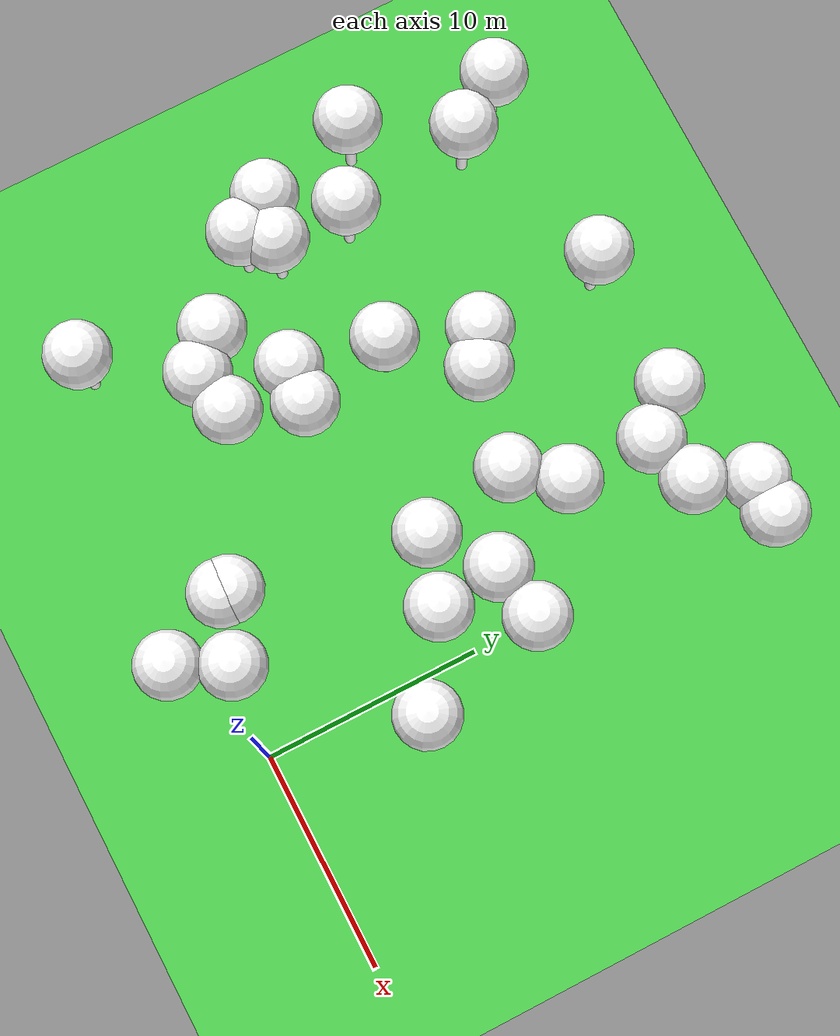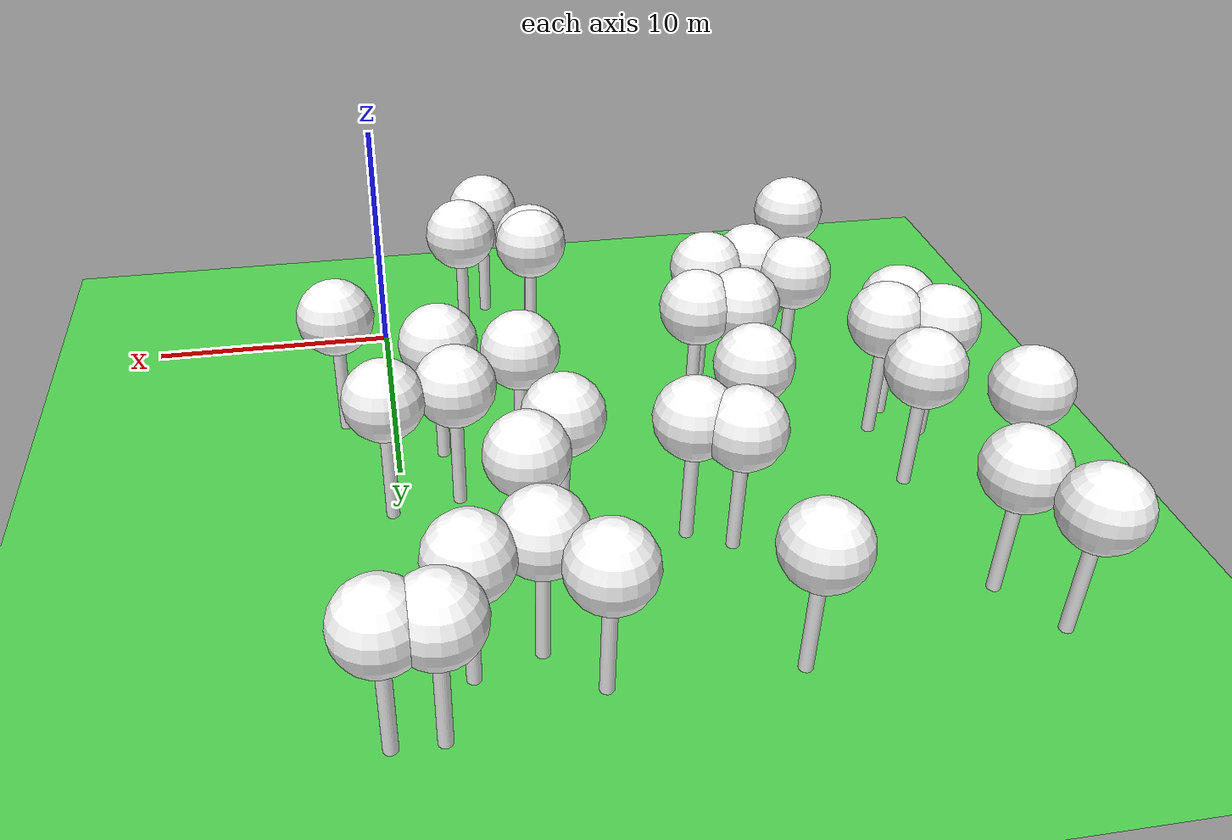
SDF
<sdf version="1.8">
 <world name="forest_world">
  <model name="tree_simple498">
   <static>1</static>
   <link name="link">
    <pose>0 0 0.1 0 -0 0</pose>
    <collision name="collision_trunk">
     <pose>0 0 2 0 -0 0</pose>
     <geometry><cylinder><radius>0.25</radius><length>4</length></cylinder></geometry>
    </collision>
    <collision name="collision_treetop">
     <pose>0 0 5.2 0 -0 0</pose>
     <geometry><sphere><radius>1.5</radius></sphere></geometry>
    </collision>
    <visual name="trunk_498">
     <pose>0 0 2 0 -0 0</pose>
     <geometry><cylinder><radius>0.25</radius><length>4</length></cylinder></geometry>
     <material>
      <ambient>0.5 0.5 0.5 1</ambient>
      <diffuse>1.0 1.0 1.0 1</diffuse>
      <specular>0.0 0.0 0.0 1</specular>
      <pbr>
       <metal>
        <albedo_map>file://textures/tree_simple_trunk.jpg</albedo_map>
        <metalness>0.0</metalness>
        <roughness>0.8</roughness>
       </metal>
      </pbr>
     </material>
    </visual>
    <visual name="treetop_498">
     <pose>0 0 5.2 0 -0 0</pose>
     <geometry><sphere><radius>1.5</radius></sphere></geometry>
     <material>
      <ambient>0.5 0.5 0.5 1</ambient>
      <diffuse>1.0 1.0 1.0 1</diffuse>
      <specular>0.0 0.0 0.0 1</specular>
      <pbr>
       <metal>
        <albedo_map>file://textures/tree_simple_treetop.jpg</albedo_map>
        <metalness>0.0</metalness>
        <roughness>0.9</roughness>
       </metal>
      </pbr>
     </material>
    </visual>
   </link>
   <pose>-20.062069779 9.09254194943 0 0 -0 0</pose>
  </model>
  <model name="tree_simple488">
   <static>1</static>
   <link name="link">
    <pose>0 0 0.1 0 -0 0</pose>
    <collision name="collision_trunk">
     <pose>0 0 2 0 -0 0</pose>
     <geometry><cylinder><radius>0.25</radius><length>4</length></cylinder></geometry>
    </collision>
    <collision name="collision_treetop">
     <pose>0 0 5.2 0 -0 0</pose>
     <geometry><sphere><radius>1.5</radius></sphere></geometry>
    </collision>
    <visual name="trunk_488">
     <pose>0 0 2 0 -0 0</pose>
     <geometry><cylinder><radius>0.25</radius><length>4</length></cylinder></geometry>
     <material>
      <ambient>0.5 0.5 0.5 1</ambient>
      <diffuse>1.0 1.0 1.0 1</diffuse>
      <specular>0.0 0.0 0.0 1</specular>
      <pbr>
       <metal>
        <albedo_map>file://textures/tree_simple_trunk.jpg</albedo_map>
        <metalness>0.0</metalness>
        <roughness>0.8</roughness>
       </metal>
      </pbr>
     </material>
    </visual>
    <visual name="treetop_488">
     <pose>0 0 5.2 0 -0 0</pose>
     <geometry><sphere><radius>1.5</radius></sphere></geometry>
     <material>
      <ambient>0.5 0.5 0.5 1</ambient>
      <diffuse>1.0 1.0 1.0 1</diffuse>
      <specular>0.0 0.0 0.0 1</specular>
      <pbr>
       <metal>
        <albedo_map>file://textures/tree_simple_treetop.jpg</albedo_map>
        <metalness>0.0</metalness>
        <roughness>0.9</roughness>
       </metal>
      </pbr>
     </material>
    </visual>
   </link>
   <pose>-13.1215818691 12.435953241 0 0 -0 0</pose>
  </model>
  <model name="tree_simple480">
   <static>1</static>
   <link name="link">
    <pose>0 0 0.1 0 -0 0</pose>
    <collision name="collision_trunk">
     <pose>0 0 2 0 -0 0</pose>
     <geometry><cylinder><radius>0.25</radius><length>4</length></cylinder></geometry>
    </collision>
    <collision name="collision_treetop">
     <pose>0 0 5.2 0 -0 0</pose>
     <geometry><sphere><radius>1.5</radius></sphere></geometry>
    </collision>
    <visual name="trunk_480">
     <pose>0 0 2 0 -0 0</pose>
     <geometry><cylinder><radius>0.25</radius><length>4</length></cylinder></geometry>
     <material>
      <ambient>0.5 0.5 0.5 1</ambient>
      <diffuse>1.0 1.0 1.0 1</diffuse>
      <specular>0.0 0.0 0.0 1</specular>
      <pbr>
       <metal>
        <albedo_map>file://textures/tree_simple_trunk.jpg</albedo_map>
        <metalness>0.0</metalness>
        <roughness>0.8</roughness>
       </metal>
      </pbr>
     </material>
    </visual>
    <visual name="treetop_480">
     <pose>0 0 5.2 0 -0 0</pose>
     <geometry><sphere><radius>1.5</radius></sphere></geometry>
     <material>
      <ambient>0.5 0.5 0.5 1</ambient>
      <diffuse>1.0 1.0 1.0 1</diffuse>
      <specular>0.0 0.0 0.0 1</specular>
      <pbr>
       <metal>
        <albedo_map>file://textures/tree_simple_treetop.jpg</albedo_map>
        <metalness>0.0</metalness>
        <roughness>0.9</roughness>
       </metal>
      </pbr>
     </material>
    </visual>
   </link>
   <pose>-2.16211412072 12.1351070175 0 0 -0 0</pose>
  </model>
  <model name="tree_simple479">
   <static>1</static>
   <link name="link">
    <pose>0 0 0.1 0 -0 0</pose>
    <collision name="collision_trunk">
     <pose>0 0 2 0 -0 0</pose>
     <geometry><cylinder><radius>0.25</radius><length>4</length></cylinder></geometry>
    </collision>
    <collision name="collision_treetop">
     <pose>0 0 5.2 0 -0 0</pose>
     <geometry><sphere><radius>1.5</radius></sphere></geometry>
    </collision>
    <visual name="trunk_479">
     <pose>0 0 2 0 -0 0</pose>
     <geometry><cylinder><radius>0.25</radius><length>4</length></cylinder></geometry>
     <material>
      <ambient>0.5 0.5 0.5 1</ambient>
      <diffuse>1.0 1.0 1.0 1</diffuse>
      <specular>0.0 0.0 0.0 1</specular>
      <pbr>
       <metal>
        <albedo_map>file://textures/tree_simple_trunk.jpg</albedo_map>
        <metalness>0.0</metalness>
        <roughness>0.8</roughness>
       </metal>
      </pbr>
     </material>
    </visual>
    <visual name="treetop_479">
     <pose>0 0 5.2 0 -0 0</pose>
     <geometry><sphere><radius>1.5</radius></sphere></geometry>
     <material>
      <ambient>0.5 0.5 0.5 1</ambient>
      <diffuse>1.0 1.0 1.0 1</diffuse>
      <specular>0.0 0.0 0.0 1</specular>
      <pbr>
       <metal>
        <albedo_map>file://textures/tree_simple_treetop.jpg</albedo_map>
        <metalness>0.0</metalness>
        <roughness>0.9</roughness>
       </metal>
      </pbr>
     </material>
    </visual>
   </link>
   <pose>-12.2778199556 22.3020251283 0 0 -0 0</pose>
  </model>
  <model name="tree_simple471">
   <static>1</static>
   <link name="link">
    <pose>0 0 0.1 0 -0 0</pose>
    <collision name="collision_trunk">
     <pose>0 0 2 0 -0 0</pose>
     <geometry><cylinder><radius>0.25</radius><length>4</length></cylinder></geometry>
    </collision>
    <collision name="collision_treetop">
     <pose>0 0 5.2 0 -0 0</pose>
     <geometry><sphere><radius>1.5</radius></sphere></geometry>
    </collision>
    <visual name="trunk_471">
     <pose>0 0 2 0 -0 0</pose>
     <geometry><cylinder><radius>0.25</radius><length>4</length></cylinder></geometry>
     <material>
      <ambient>0.5 0.5 0.5 1</ambient>
      <diffuse>1.0 1.0 1.0 1</diffuse>
      <specular>0.0 0.0 0.0 1</specular>
      <pbr>
       <metal>
        <albedo_map>file://textures/tree_simple_trunk.jpg</albedo_map>
        <metalness>0.0</metalness>
        <roughness>0.8</roughness>
       </metal>
      </pbr>
     </material>
    </visual>
    <visual name="treetop_471">
     <pose>0 0 5.2 0 -0 0</pose>
     <geometry><sphere><radius>1.5</radius></sphere></geometry>
     <material>
      <ambient>0.5 0.5 0.5 1</ambient>
      <diffuse>1.0 1.0 1.0 1</diffuse>
      <specular>0.0 0.0 0.0 1</specular>
      <pbr>
       <metal>
        <albedo_map>file://textures/tree_simple_treetop.jpg</albedo_map>
        <metalness>0.0</metalness>
        <roughness>0.9</roughness>
       </metal>
      </pbr>
     </material>
    </visual>
   </link>
   <pose>-4.10985349052 16.4703272545 0 0 -0 0</pose>
  </model>
  <model name="tree_simple466">
   <static>1</static>
   <link name="link">
    <pose>0 0 0.1 0 -0 0</pose>
    <collision name="collision_trunk">
     <pose>0 0 2 0 -0 0</pose>
     <geometry><cylinder><radius>0.25</radius><length>4</length></cylinder></geometry>
    </collision>
    <collision name="collision_treetop">
     <pose>0 0 5.2 0 -0 0</pose>
     <geometry><sphere><radius>1.5</radius></sphere></geometry>
    </collision>
    <visual name="trunk_466">
     <pose>0 0 2 0 -0 0</pose>
     <geometry><cylinder><radius>0.25</radius><length>4</length></cylinder></geometry>
     <material>
      <ambient>0.5 0.5 0.5 1</ambient>
      <diffuse>1.0 1.0 1.0 1</diffuse>
      <specular>0.0 0.0 0.0 1</specular>
      <pbr>
       <metal>
        <albedo_map>file://textures/tree_simple_trunk.jpg</albedo_map>
        <metalness>0.0</metalness>
        <roughness>0.8</roughness>
       </metal>
      </pbr>
     </material>
    </visual>
    <visual name="treetop_466">
     <pose>0 0 5.2 0 -0 0</pose>
     <geometry><sphere><radius>1.5</radius></sphere></geometry>
     <material>
      <ambient>0.5 0.5 0.5 1</ambient>
      <diffuse>1.0 1.0 1.0 1</diffuse>
      <specular>0.0 0.0 0.0 1</specular>
      <pbr>
       <metal>
        <albedo_map>file://textures/tree_simple_treetop.jpg</albedo_map>
        <metalness>0.0</metalness>
        <roughness>0.9</roughness>
       </metal>
      </pbr>
     </material>
    </visual>
   </link>
   <pose>-5.77986608036 22.173723886 0 0 -0 0</pose>
  </model>
  <model name="tree_simple460">
   <static>1</static>
   <link name="link">
    <pose>0 0 0.1 0 -0 0</pose>
    <collision name="collision_trunk">
     <pose>0 0 2 0 -0 0</pose>
     <geometry><cylinder><radius>0.25</radius><length>4</length></cylinder></geometry>
    </collision>
    <collision name="collision_treetop">
     <pose>0 0 5.2 0 -0 0</pose>
     <geometry><sphere><radius>1.5</radius></sphere></geometry>
    </collision>
    <visual name="trunk_460">
     <pose>0 0 2 0 -0 0</pose>
     <geometry><cylinder><radius>0.25</radius><length>4</length></cylinder></geometry>
     <material>
      <ambient>0.5 0.5 0.5 1</ambient>
      <diffuse>1.0 1.0 1.0 1</diffuse>
      <specular>0.0 0.0 0.0 1</specular>
      <pbr>
       <metal>
        <albedo_map>file://textures/tree_simple_trunk.jpg</albedo_map>
        <metalness>0.0</metalness>
        <roughness>0.8</roughness>
       </metal>
      </pbr>
     </material>
    </visual>
    <visual name="treetop_460">
     <pose>0 0 5.2 0 -0 0</pose>
     <geometry><sphere><radius>1.5</radius></sphere></geometry>
     <material>
      <ambient>0.5 0.5 0.5 1</ambient>
      <diffuse>1.0 1.0 1.0 1</diffuse>
      <specular>0.0 0.0 0.0 1</specular>
      <pbr>
       <metal>
        <albedo_map>file://textures/tree_simple_treetop.jpg</albedo_map>
        <metalness>0.0</metalness>
        <roughness>0.9</roughness>
       </metal>
      </pbr>
     </material>
    </visual>
   </link>
   <pose>-19.1263542494 10.273291852 0 0 -0 0</pose>
  </model>
  <model name="tree_simple453">
   <static>1</static>
   <link name="link">
    <pose>0 0 0.1 0 -0 0</pose>
    <collision name="collision_trunk">
     <pose>0 0 2 0 -0 0</pose>
     <geometry><cylinder><radius>0.25</radius><length>4</length></cylinder></geometry>
    </collision>
    <collision name="collision_treetop">
     <pose>0 0 5.2 0 -0 0</pose>
     <geometry><sphere><radius>1.5</radius></sphere></geometry>
    </collision>
    <visual name="trunk_453">
     <pose>0 0 2 0 -0 0</pose>
     <geometry><cylinder><radius>0.25</radius><length>4</length></cylinder></geometry>
     <material>
      <ambient>0.5 0.5 0.5 1</ambient>
      <diffuse>1.0 1.0 1.0 1</diffuse>
      <specular>0.0 0.0 0.0 1</specular>
      <pbr>
       <metal>
        <albedo_map>file://textures/tree_simple_trunk.jpg</albedo_map>
        <metalness>0.0</metalness>
        <roughness>0.8</roughness>
       </metal>
      </pbr>
     </material>
    </visual>
    <visual name="treetop_453">
     <pose>0 0 5.2 0 -0 0</pose>
     <geometry><sphere><radius>1.5</radius></sphere></geometry>
     <material>
      <ambient>0.5 0.5 0.5 1</ambient>
      <diffuse>1.0 1.0 1.0 1</diffuse>
      <specular>0.0 0.0 0.0 1</specular>
      <pbr>
       <metal>
        <albedo_map>file://textures/tree_simple_treetop.jpg</albedo_map>
        <metalness>0.0</metalness>
        <roughness>0.9</roughness>
       </metal>
      </pbr>
     </material>
    </visual>
   </link>
   <pose>-12.135251061 8.19022164755 0 0 -0 0</pose>
  </model>
  <model name="tree_simple442">
   <static>1</static>
   <link name="link">
    <pose>0 0 0.1 0 -0 0</pose>
    <collision name="collision_trunk">
     <pose>0 0 2 0 -0 0</pose>
     <geometry><cylinder><radius>0.25</radius><length>4</length></cylinder></geometry>
    </collision>
    <collision name="collision_treetop">
     <pose>0 0 5.2 0 -0 0</pose>
     <geometry><sphere><radius>1.5</radius></sphere></geometry>
    </collision>
    <visual name="trunk_442">
     <pose>0 0 2 0 -0 0</pose>
     <geometry><cylinder><radius>0.25</radius><length>4</length></cylinder></geometry>
     <material>
      <ambient>0.5 0.5 0.5 1</ambient>
      <diffuse>1.0 1.0 1.0 1</diffuse>
      <specular>0.0 0.0 0.0 1</specular>
      <pbr>
       <metal>
        <albedo_map>file://textures/tree_simple_trunk.jpg</albedo_map>
        <metalness>0.0</metalness>
        <roughness>0.8</roughness>
       </metal>
      </pbr>
     </material>
    </visual>
    <visual name="treetop_442">
     <pose>0 0 5.2 0 -0 0</pose>
     <geometry><sphere><radius>1.5</radius></sphere></geometry>
     <material>
      <ambient>0.5 0.5 0.5 1</ambient>
      <diffuse>1.0 1.0 1.0 1</diffuse>
      <specular>0.0 0.0 0.0 1</specular>
      <pbr>
       <metal>
        <albedo_map>file://textures/tree_simple_treetop.jpg</albedo_map>
        <metalness>0.0</metalness>
        <roughness>0.9</roughness>
       </metal>
      </pbr>
     </material>
    </visual>
   </link>
   <pose>-1.68249170611 21.1094247696 0 0 -0 0</pose>
  </model>
  <model name="tree_simple424">
   <static>1</static>
   <link name="link">
    <pose>0 0 0.1 0 -0 0</pose>
    <collision name="collision_trunk">
     <pose>0 0 2 0 -0 0</pose>
     <geometry><cylinder><radius>0.25</radius><length>4</length></cylinder></geometry>
    </collision>
    <collision name="collision_treetop">
     <pose>0 0 5.2 0 -0 0</pose>
     <geometry><sphere><radius>1.5</radius></sphere></geometry>
    </collision>
    <visual name="trunk_424">
     <pose>0 0 2 0 -0 0</pose>
     <geometry><cylinder><radius>0.25</radius><length>4</length></cylinder></geometry>
     <material>
      <ambient>0.5 0.5 0.5 1</ambient>
      <diffuse>1.0 1.0 1.0 1</diffuse>
      <specular>0.0 0.0 0.0 1</specular>
      <pbr>
       <metal>
        <albedo_map>file://textures/tree_simple_trunk.jpg</albedo_map>
        <metalness>0.0</metalness>
        <roughness>0.8</roughness>
       </metal>
      </pbr>
     </material>
    </visual>
    <visual name="treetop_424">
     <pose>0 0 5.2 0 -0 0</pose>
     <geometry><sphere><radius>1.5</radius></sphere></geometry>
     <material>
      <ambient>0.5 0.5 0.5 1</ambient>
      <diffuse>1.0 1.0 1.0 1</diffuse>
      <specular>0.0 0.0 0.0 1</specular>
      <pbr>
       <metal>
        <albedo_map>file://textures/tree_simple_treetop.jpg</albedo_map>
        <metalness>0.0</metalness>
        <roughness>0.9</roughness>
       </metal>
      </pbr>
     </material>
    </visual>
   </link>
   <pose>-16.7770993139 6.12178979124 0 0 -0 0</pose>
  </model>
  <model name="tree_simple417">
   <static>1</static>
   <link name="link">
    <pose>0 0 0.1 0 -0 0</pose>
    <collision name="collision_trunk">
     <pose>0 0 2 0 -0 0</pose>
     <geometry><cylinder><radius>0.25</radius><length>4</length></cylinder></geometry>
    </collision>
    <collision name="collision_treetop">
     <pose>0 0 5.2 0 -0 0</pose>
     <geometry><sphere><radius>1.5</radius></sphere></geometry>
    </collision>
    <visual name="trunk_417">
     <pose>0 0 2 0 -0 0</pose>
     <geometry><cylinder><radius>0.25</radius><length>4</length></cylinder></geometry>
     <material>
      <ambient>0.5 0.5 0.5 1</ambient>
      <diffuse>1.0 1.0 1.0 1</diffuse>
      <specular>0.0 0.0 0.0 1</specular>
      <pbr>
       <metal>
        <albedo_map>file://textures/tree_simple_trunk.jpg</albedo_map>
        <metalness>0.0</metalness>
        <roughness>0.8</roughness>
       </metal>
      </pbr>
     </material>
    </visual>
    <visual name="treetop_417">
     <pose>0 0 5.2 0 -0 0</pose>
     <geometry><sphere><radius>1.5</radius></sphere></geometry>
     <material>
      <ambient>0.5 0.5 0.5 1</ambient>
      <diffuse>1.0 1.0 1.0 1</diffuse>
      <specular>0.0 0.0 0.0 1</specular>
      <pbr>
       <metal>
        <albedo_map>file://textures/tree_simple_treetop.jpg</albedo_map>
        <metalness>0.0</metalness>
        <roughness>0.9</roughness>
       </metal>
      </pbr>
     </material>
    </visual>
   </link>
   <pose>-1.82310579314 9.17527441854 0 0 -0 0</pose>
  </model>
  <model name="tree_simple412">
   <static>1</static>
   <link name="link">
    <pose>0 0 0.1 0 -0 0</pose>
    <collision name="collision_trunk">
     <pose>0 0 2 0 -0 0</pose>
     <geometry><cylinder><radius>0.25</radius><length>4</length></cylinder></geometry>
    </collision>
    <collision name="collision_treetop">
     <pose>0 0 5.2 0 -0 0</pose>
     <geometry><sphere><radius>1.5</radius></sphere></geometry>
    </collision>
    <visual name="trunk_412">
     <pose>0 0 2 0 -0 0</pose>
     <geometry><cylinder><radius>0.25</radius><length>4</length></cylinder></geometry>
     <material>
      <ambient>0.5 0.5 0.5 1</ambient>
      <diffuse>1.0 1.0 1.0 1</diffuse>
      <specular>0.0 0.0 0.0 1</specular>
      <pbr>
       <metal>
        <albedo_map>file://textures/tree_simple_trunk.jpg</albedo_map>
        <metalness>0.0</metalness>
        <roughness>0.8</roughness>
       </metal>
      </pbr>
     </material>
    </visual>
    <visual name="treetop_412">
     <pose>0 0 5.2 0 -0 0</pose>
     <geometry><sphere><radius>1.5</radius></sphere></geometry>
     <material>
      <ambient>0.5 0.5 0.5 1</ambient>
      <diffuse>1.0 1.0 1.0 1</diffuse>
      <specular>0.0 0.0 0.0 1</specular>
      <pbr>
       <metal>
        <albedo_map>file://textures/tree_simple_treetop.jpg</albedo_map>
        <metalness>0.0</metalness>
        <roughness>0.9</roughness>
       </metal>
      </pbr>
     </material>
    </visual>
   </link>
   <pose>1.94235434688 6.68973059551 0 0 -0 0</pose>
  </model>
  <model name="tree_simple393">
   <static>1</static>
   <link name="link">
    <pose>0 0 0.1 0 -0 0</pose>
    <collision name="collision_trunk">
     <pose>0 0 2 0 -0 0</pose>
     <geometry><cylinder><radius>0.25</radius><length>4</length></cylinder></geometry>
    </collision>
    <collision name="collision_treetop">
     <pose>0 0 5.2 0 -0 0</pose>
     <geometry><sphere><radius>1.5</radius></sphere></geometry>
    </collision>
    <visual name="trunk_393">
     <pose>0 0 2 0 -0 0</pose>
     <geometry><cylinder><radius>0.25</radius><length>4</length></cylinder></geometry>
     <material>
      <ambient>0.5 0.5 0.5 1</ambient>
      <diffuse>1.0 1.0 1.0 1</diffuse>
      <specular>0.0 0.0 0.0 1</specular>
      <pbr>
       <metal>
        <albedo_map>file://textures/tree_simple_trunk.jpg</albedo_map>
        <metalness>0.0</metalness>
        <roughness>0.8</roughness>
       </metal>
      </pbr>
     </material>
    </visual>
    <visual name="treetop_393">
     <pose>0 0 5.2 0 -0 0</pose>
     <geometry><sphere><radius>1.5</radius></sphere></geometry>
     <material>
      <ambient>0.5 0.5 0.5 1</ambient>
      <diffuse>1.0 1.0 1.0 1</diffuse>
      <specular>0.0 0.0 0.0 1</specular>
      <pbr>
       <metal>
        <albedo_map>file://textures/tree_simple_treetop.jpg</albedo_map>
        <metalness>0.0</metalness>
        <roughness>0.9</roughness>
       </metal>
      </pbr>
     </material>
    </visual>
   </link>
   <pose>-19.2161378336 13.717868908 0 0 -0 0</pose>
  </model>
  <model name="tree_simple376">
   <static>1</static>
   <link name="link">
    <pose>0 0 0.1 0 -0 0</pose>
    <collision name="collision_trunk">
     <pose>0 0 2 0 -0 0</pose>
     <geometry><cylinder><radius>0.25</radius><length>4</length></cylinder></geometry>
    </collision>
    <collision name="collision_treetop">
     <pose>0 0 5.2 0 -0 0</pose>
     <geometry><sphere><radius>1.5</radius></sphere></geometry>
    </collision>
    <visual name="trunk_376">
     <pose>0 0 2 0 -0 0</pose>
     <geometry><cylinder><radius>0.25</radius><length>4</length></cylinder></geometry>
     <material>
      <ambient>0.5 0.5 0.5 1</ambient>
      <diffuse>1.0 1.0 1.0 1</diffuse>
      <specular>0.0 0.0 0.0 1</specular>
      <pbr>
       <metal>
        <albedo_map>file://textures/tree_simple_trunk.jpg</albedo_map>
        <metalness>0.0</metalness>
        <roughness>0.8</roughness>
       </metal>
      </pbr>
     </material>
    </visual>
    <visual name="treetop_376">
     <pose>0 0 5.2 0 -0 0</pose>
     <geometry><sphere><radius>1.5</radius></sphere></geometry>
     <material>
      <ambient>0.5 0.5 0.5 1</ambient>
      <diffuse>1.0 1.0 1.0 1</diffuse>
      <specular>0.0 0.0 0.0 1</specular>
      <pbr>
       <metal>
        <albedo_map>file://textures/tree_simple_treetop.jpg</albedo_map>
        <metalness>0.0</metalness>
        <roughness>0.9</roughness>
       </metal>
      </pbr>
     </material>
    </visual>
   </link>
   <pose>-3.57495660346 0.511559407044 0 0 -0 0</pose>
  </model>
  <model name="tree_simple360">
   <static>1</static>
   <link name="link">
    <pose>0 0 0.1 0 -0 0</pose>
    <collision name="collision_trunk">
     <pose>0 0 2 0 -0 0</pose>
     <geometry><cylinder><radius>0.25</radius><length>4</length></cylinder></geometry>
    </collision>
    <collision name="collision_treetop">
     <pose>0 0 5.2 0 -0 0</pose>
     <geometry><sphere><radius>1.5</radius></sphere></geometry>
    </collision>
    <visual name="trunk_360">
     <pose>0 0 2 0 -0 0</pose>
     <geometry><cylinder><radius>0.25</radius><length>4</length></cylinder></geometry>
     <material>
      <ambient>0.5 0.5 0.5 1</ambient>
      <diffuse>1.0 1.0 1.0 1</diffuse>
      <specular>0.0 0.0 0.0 1</specular>
      <pbr>
       <metal>
        <albedo_map>file://textures/tree_simple_trunk.jpg</albedo_map>
        <metalness>0.0</metalness>
        <roughness>0.8</roughness>
       </metal>
      </pbr>
     </material>
    </visual>
    <visual name="treetop_360">
     <pose>0 0 5.2 0 -0 0</pose>
     <geometry><sphere><radius>1.5</radius></sphere></geometry>
     <material>
      <ambient>0.5 0.5 0.5 1</ambient>
      <diffuse>1.0 1.0 1.0 1</diffuse>
      <specular>0.0 0.0 0.0 1</specular>
      <pbr>
       <metal>
        <albedo_map>file://textures/tree_simple_treetop.jpg</albedo_map>
        <metalness>0.0</metalness>
        <roughness>0.9</roughness>
       </metal>
      </pbr>
     </material>
    </visual>
   </link>
   <pose>-13.8761955988 8.30702560736 0 0 -0 0</pose>
  </model>
  <model name="tree_simple338">
   <static>1</static>
   <link name="link">
    <pose>0 0 0.1 0 -0 0</pose>
    <collision name="collision_trunk">
     <pose>0 0 2 0 -0 0</pose>
     <geometry><cylinder><radius>0.25</radius><length>4</length></cylinder></geometry>
    </collision>
    <collision name="collision_treetop">
     <pose>0 0 5.2 0 -0 0</pose>
     <geometry><sphere><radius>1.5</radius></sphere></geometry>
    </collision>
    <visual name="trunk_338">
     <pose>0 0 2 0 -0 0</pose>
     <geometry><cylinder><radius>0.25</radius><length>4</length></cylinder></geometry>
     <material>
      <ambient>0.5 0.5 0.5 1</ambient>
      <diffuse>1.0 1.0 1.0 1</diffuse>
      <specular>0.0 0.0 0.0 1</specular>
      <pbr>
       <metal>
        <albedo_map>file://textures/tree_simple_trunk.jpg</albedo_map>
        <metalness>0.0</metalness>
        <roughness>0.8</roughness>
       </metal>
      </pbr>
     </material>
    </visual>
    <visual name="treetop_338">
     <pose>0 0 5.2 0 -0 0</pose>
     <geometry><sphere><radius>1.5</radius></sphere></geometry>
     <material>
      <ambient>0.5 0.5 0.5 1</ambient>
      <diffuse>1.0 1.0 1.0 1</diffuse>
      <specular>0.0 0.0 0.0 1</specular>
      <pbr>
       <metal>
        <albedo_map>file://textures/tree_simple_treetop.jpg</albedo_map>
        <metalness>0.0</metalness>
        <roughness>0.9</roughness>
       </metal>
      </pbr>
     </material>
    </visual>
   </link>
   <pose>-22.4236352143 15.4465495723 0 0 -0 0</pose>
  </model>
  <model name="tree_simple284">
   <static>1</static>
   <link name="link">
    <pose>0 0 0.1 0 -0 0</pose>
    <collision name="collision_trunk">
     <pose>0 0 2 0 -0 0</pose>
     <geometry><cylinder><radius>0.25</radius><length>4</length></cylinder></geometry>
    </collision>
    <collision name="collision_treetop">
     <pose>0 0 5.2 0 -0 0</pose>
     <geometry><sphere><radius>1.5</radius></sphere></geometry>
    </collision>
    <visual name="trunk_284">
     <pose>0 0 2 0 -0 0</pose>
     <geometry><cylinder><radius>0.25</radius><length>4</length></cylinder></geometry>
     <material>
      <ambient>0.5 0.5 0.5 1</ambient>
      <diffuse>1.0 1.0 1.0 1</diffuse>
      <specular>0.0 0.0 0.0 1</specular>
      <pbr>
       <metal>
        <albedo_map>file://textures/tree_simple_trunk.jpg</albedo_map>
        <metalness>0.0</metalness>
        <roughness>0.8</roughness>
       </metal>
      </pbr>
     </material>
    </visual>
    <visual name="treetop_284">
     <pose>0 0 5.2 0 -0 0</pose>
     <geometry><sphere><radius>1.5</radius></sphere></geometry>
     <material>
      <ambient>0.5 0.5 0.5 1</ambient>
      <diffuse>1.0 1.0 1.0 1</diffuse>
      <specular>0.0 0.0 0.0 1</specular>
      <pbr>
       <metal>
        <albedo_map>file://textures/tree_simple_treetop.jpg</albedo_map>
        <metalness>0.0</metalness>
        <roughness>0.9</roughness>
       </metal>
      </pbr>
     </material>
    </visual>
   </link>
   <pose>-18.3910783374 0.559962709575 0 0 -0 0</pose>
  </model>
  <model name="tree_simple282">
   <static>1</static>
   <link name="link">
    <pose>0 0 0.1 0 -0 0</pose>
    <collision name="collision_trunk">
     <pose>0 0 2 0 -0 0</pose>
     <geometry><cylinder><radius>0.25</radius><length>4</length></cylinder></geometry>
    </collision>
    <collision name="collision_treetop">
     <pose>0 0 5.2 0 -0 0</pose>
     <geometry><sphere><radius>1.5</radius></sphere></geometry>
    </collision>
    <visual name="trunk_282">
     <pose>0 0 2 0 -0 0</pose>
     <geometry><cylinder><radius>0.25</radius><length>4</length></cylinder></geometry>
     <material>
      <ambient>0.5 0.5 0.5 1</ambient>
      <diffuse>1.0 1.0 1.0 1</diffuse>
      <specular>0.0 0.0 0.0 1</specular>
      <pbr>
       <metal>
        <albedo_map>file://textures/tree_simple_trunk.jpg</albedo_map>
        <metalness>0.0</metalness>
        <roughness>0.8</roughness>
       </metal>
      </pbr>
     </material>
    </visual>
    <visual name="treetop_282">
     <pose>0 0 5.2 0 -0 0</pose>
     <geometry><sphere><radius>1.5</radius></sphere></geometry>
     <material>
      <ambient>0.5 0.5 0.5 1</ambient>
      <diffuse>1.0 1.0 1.0 1</diffuse>
      <specular>0.0 0.0 0.0 1</specular>
      <pbr>
       <metal>
        <albedo_map>file://textures/tree_simple_treetop.jpg</albedo_map>
        <metalness>0.0</metalness>
        <roughness>0.9</roughness>
       </metal>
      </pbr>
     </material>
    </visual>
   </link>
   <pose>-10.116665752 15.3935200089 0 0 -0 0</pose>
  </model>
  <model name="tree_simple251">
   <static>1</static>
   <link name="link">
    <pose>0 0 0.1 0 -0 0</pose>
    <collision name="collision_trunk">
     <pose>0 0 2 0 -0 0</pose>
     <geometry><cylinder><radius>0.25</radius><length>4</length></cylinder></geometry>
    </collision>
    <collision name="collision_treetop">
     <pose>0 0 5.2 0 -0 0</pose>
     <geometry><sphere><radius>1.5</radius></sphere></geometry>
    </collision>
    <visual name="trunk_251">
     <pose>0 0 2 0 -0 0</pose>
     <geometry><cylinder><radius>0.25</radius><length>4</length></cylinder></geometry>
     <material>
      <ambient>0.5 0.5 0.5 1</ambient>
      <diffuse>1.0 1.0 1.0 1</diffuse>
      <specular>0.0 0.0 0.0 1</specular>
      <pbr>
       <metal>
        <albedo_map>file://textures/tree_simple_trunk.jpg</albedo_map>
        <metalness>0.0</metalness>
        <roughness>0.8</roughness>
       </metal>
      </pbr>
     </material>
    </visual>
    <visual name="treetop_251">
     <pose>0 0 5.2 0 -0 0</pose>
     <geometry><sphere><radius>1.5</radius></sphere></geometry>
     <material>
      <ambient>0.5 0.5 0.5 1</ambient>
      <diffuse>1.0 1.0 1.0 1</diffuse>
      <specular>0.0 0.0 0.0 1</specular>
      <pbr>
       <metal>
        <albedo_map>file://textures/tree_simple_treetop.jpg</albedo_map>
        <metalness>0.0</metalness>
        <roughness>0.9</roughness>
       </metal>
      </pbr>
     </material>
    </visual>
   </link>
   <pose>-19.9479400909 19.7976665809 0 0 -0 0</pose>
  </model>
  <model name="tree_simple232">
   <static>1</static>
   <link name="link">
    <pose>0 0 0.1 0 -0 0</pose>
    <collision name="collision_trunk">
     <pose>0 0 2 0 -0 0</pose>
     <geometry><cylinder><radius>0.25</radius><length>4</length></cylinder></geometry>
    </collision>
    <collision name="collision_treetop">
     <pose>0 0 5.2 0 -0 0</pose>
     <geometry><sphere><radius>1.5</radius></sphere></geometry>
    </collision>
    <visual name="trunk_232">
     <pose>0 0 2 0 -0 0</pose>
     <geometry><cylinder><radius>0.25</radius><length>4</length></cylinder></geometry>
     <material>
      <ambient>0.5 0.5 0.5 1</ambient>
      <diffuse>1.0 1.0 1.0 1</diffuse>
      <specular>0.0 0.0 0.0 1</specular>
      <pbr>
       <metal>
        <albedo_map>file://textures/tree_simple_trunk.jpg</albedo_map>
        <metalness>0.0</metalness>
        <roughness>0.8</roughness>
       </metal>
      </pbr>
     </material>
    </visual>
    <visual name="treetop_232">
     <pose>0 0 5.2 0 -0 0</pose>
     <geometry><sphere><radius>1.5</radius></sphere></geometry>
     <material>
      <ambient>0.5 0.5 0.5 1</ambient>
      <diffuse>1.0 1.0 1.0 1</diffuse>
      <specular>0.0 0.0 0.0 1</specular>
      <pbr>
       <metal>
        <albedo_map>file://textures/tree_simple_treetop.jpg</albedo_map>
        <metalness>0.0</metalness>
        <roughness>0.9</roughness>
       </metal>
      </pbr>
     </material>
    </visual>
   </link>
   <pose>-11.6357803634 16.236207717 0 0 -0 0</pose>
  </model>
  <model name="tree_simple226">
   <static>1</static>
   <link name="link">
    <pose>0 0 0.1 0 -0 0</pose>
    <collision name="collision_trunk">
     <pose>0 0 2 0 -0 0</pose>
     <geometry><cylinder><radius>0.25</radius><length>4</length></cylinder></geometry>
    </collision>
    <collision name="collision_treetop">
     <pose>0 0 5.2 0 -0 0</pose>
     <geometry><sphere><radius>1.5</radius></sphere></geometry>
    </collision>
    <visual name="trunk_226">
     <pose>0 0 2 0 -0 0</pose>
     <geometry><cylinder><radius>0.25</radius><length>4</length></cylinder></geometry>
     <material>
      <ambient>0.5 0.5 0.5 1</ambient>
      <diffuse>1.0 1.0 1.0 1</diffuse>
      <specular>0.0 0.0 0.0 1</specular>
      <pbr>
       <metal>
        <albedo_map>file://textures/tree_simple_trunk.jpg</albedo_map>
        <metalness>0.0</metalness>
        <roughness>0.8</roughness>
       </metal>
      </pbr>
     </material>
    </visual>
    <visual name="treetop_226">
     <pose>0 0 5.2 0 -0 0</pose>
     <geometry><sphere><radius>1.5</radius></sphere></geometry>
     <material>
      <ambient>0.5 0.5 0.5 1</ambient>
      <diffuse>1.0 1.0 1.0 1</diffuse>
      <specular>0.0 0.0 0.0 1</specular>
      <pbr>
       <metal>
        <albedo_map>file://textures/tree_simple_treetop.jpg</albedo_map>
        <metalness>0.0</metalness>
        <roughness>0.9</roughness>
       </metal>
      </pbr>
     </material>
    </visual>
   </link>
   <pose>-15.3498793375 4.7340721764 0 0 -0 0</pose>
  </model>
  <model name="tree_simple187">
   <static>1</static>
   <link name="link">
    <pose>0 0 0.1 0 -0 0</pose>
    <collision name="collision_trunk">
     <pose>0 0 2 0 -0 0</pose>
     <geometry><cylinder><radius>0.25</radius><length>4</length></cylinder></geometry>
    </collision>
    <collision name="collision_treetop">
     <pose>0 0 5.2 0 -0 0</pose>
     <geometry><sphere><radius>1.5</radius></sphere></geometry>
    </collision>
    <visual name="trunk_187">
     <pose>0 0 2 0 -0 0</pose>
     <geometry><cylinder><radius>0.25</radius><length>4</length></cylinder></geometry>
     <material>
      <ambient>0.5 0.5 0.5 1</ambient>
      <diffuse>1.0 1.0 1.0 1</diffuse>
      <specular>0.0 0.0 0.0 1</specular>
      <pbr>
       <metal>
        <albedo_map>file://textures/tree_simple_trunk.jpg</albedo_map>
        <metalness>0.0</metalness>
        <roughness>0.8</roughness>
       </metal>
      </pbr>
     </material>
    </visual>
    <visual name="treetop_187">
     <pose>0 0 5.2 0 -0 0</pose>
     <geometry><sphere><radius>1.5</radius></sphere></geometry>
     <material>
      <ambient>0.5 0.5 0.5 1</ambient>
      <diffuse>1.0 1.0 1.0 1</diffuse>
      <specular>0.0 0.0 0.0 1</specular>
      <pbr>
       <metal>
        <albedo_map>file://textures/tree_simple_treetop.jpg</albedo_map>
        <metalness>0.0</metalness>
        <roughness>0.9</roughness>
       </metal>
      </pbr>
     </material>
    </visual>
   </link>
   <pose>-6.45553635196 1.79140972094 0 0 -0 0</pose>
  </model>
  <model name="tree_simple175">
   <static>1</static>
   <link name="link">
    <pose>0 0 0.1 0 -0 0</pose>
    <collision name="collision_trunk">
     <pose>0 0 2 0 -0 0</pose>
     <geometry><cylinder><radius>0.25</radius><length>4</length></cylinder></geometry>
    </collision>
    <collision name="collision_treetop">
     <pose>0 0 5.2 0 -0 0</pose>
     <geometry><sphere><radius>1.5</radius></sphere></geometry>
    </collision>
    <visual name="trunk_175">
     <pose>0 0 2 0 -0 0</pose>
     <geometry><cylinder><radius>0.25</radius><length>4</length></cylinder></geometry>
     <material>
      <ambient>0.5 0.5 0.5 1</ambient>
      <diffuse>1.0 1.0 1.0 1</diffuse>
      <specular>0.0 0.0 0.0 1</specular>
      <pbr>
       <metal>
        <albedo_map>file://textures/tree_simple_trunk.jpg</albedo_map>
        <metalness>0.0</metalness>
        <roughness>0.8</roughness>
       </metal>
      </pbr>
     </material>
    </visual>
    <visual name="treetop_175">
     <pose>0 0 5.2 0 -0 0</pose>
     <geometry><sphere><radius>1.5</radius></sphere></geometry>
     <material>
      <ambient>0.5 0.5 0.5 1</ambient>
      <diffuse>1.0 1.0 1.0 1</diffuse>
      <specular>0.0 0.0 0.0 1</specular>
      <pbr>
       <metal>
        <albedo_map>file://textures/tree_simple_treetop.jpg</albedo_map>
        <metalness>0.0</metalness>
        <roughness>0.9</roughness>
       </metal>
      </pbr>
     </material>
    </visual>
   </link>
   <pose>-0.556108098606 23.4554331428 0 0 -0 0</pose>
  </model>
  <model name="tree_simple165">
   <static>1</static>
   <link name="link">
    <pose>0 0 0.1 0 -0 0</pose>
    <collision name="collision_trunk">
     <pose>0 0 2 0 -0 0</pose>
     <geometry><cylinder><radius>0.25</radius><length>4</length></cylinder></geometry>
    </collision>
    <collision name="collision_treetop">
     <pose>0 0 5.2 0 -0 0</pose>
     <geometry><sphere><radius>1.5</radius></sphere></geometry>
    </collision>
    <visual name="trunk_165">
     <pose>0 0 2 0 -0 0</pose>
     <geometry><cylinder><radius>0.25</radius><length>4</length></cylinder></geometry>
     <material>
      <ambient>0.5 0.5 0.5 1</ambient>
      <diffuse>1.0 1.0 1.0 1</diffuse>
      <specular>0.0 0.0 0.0 1</specular>
      <pbr>
       <metal>
        <albedo_map>file://textures/tree_simple_trunk.jpg</albedo_map>
        <metalness>0.0</metalness>
        <roughness>0.8</roughness>
       </metal>
      </pbr>
     </material>
    </visual>
    <visual name="treetop_165">
     <pose>0 0 5.2 0 -0 0</pose>
     <geometry><sphere><radius>1.5</radius></sphere></geometry>
     <material>
      <ambient>0.5 0.5 0.5 1</ambient>
      <diffuse>1.0 1.0 1.0 1</diffuse>
      <specular>0.0 0.0 0.0 1</specular>
      <pbr>
       <metal>
        <albedo_map>file://textures/tree_simple_treetop.jpg</albedo_map>
        <metalness>0.0</metalness>
        <roughness>0.9</roughness>
       </metal>
      </pbr>
     </material>
    </visual>
   </link>
   <pose>-6.476660544 1.43780692284 0 0 -0 0</pose>
  </model>
  <model name="tree_simple163">
   <static>1</static>
   <link name="link">
    <pose>0 0 0.1 0 -0 0</pose>
    <collision name="collision_trunk">
     <pose>0 0 2 0 -0 0</pose>
     <geometry><cylinder><radius>0.25</radius><length>4</length></cylinder></geometry>
    </collision>
    <collision name="collision_treetop">
     <pose>0 0 5.2 0 -0 0</pose>
     <geometry><sphere><radius>1.5</radius></sphere></geometry>
    </collision>
    <visual name="trunk_163">
     <pose>0 0 2 0 -0 0</pose>
     <geometry><cylinder><radius>0.25</radius><length>4</length></cylinder></geometry>
     <material>
      <ambient>0.5 0.5 0.5 1</ambient>
      <diffuse>1.0 1.0 1.0 1</diffuse>
      <specular>0.0 0.0 0.0 1</specular>
      <pbr>
       <metal>
        <albedo_map>file://textures/tree_simple_trunk.jpg</albedo_map>
        <metalness>0.0</metalness>
        <roughness>0.8</roughness>
       </metal>
      </pbr>
     </material>
    </visual>
    <visual name="treetop_163">
     <pose>0 0 5.2 0 -0 0</pose>
     <geometry><sphere><radius>1.5</radius></sphere></geometry>
     <material>
      <ambient>0.5 0.5 0.5 1</ambient>
      <diffuse>1.0 1.0 1.0 1</diffuse>
      <specular>0.0 0.0 0.0 1</specular>
      <pbr>
       <metal>
        <albedo_map>file://textures/tree_simple_treetop.jpg</albedo_map>
        <metalness>0.0</metalness>
        <roughness>0.9</roughness>
       </metal>
      </pbr>
     </material>
    </visual>
   </link>
   <pose>-21.1018337127 10.7784018303 0 0 -0 0</pose>
  </model>
  <model name="tree_simple158">
   <static>1</static>
   <link name="link">
    <pose>0 0 0.1 0 -0 0</pose>
    <collision name="collision_trunk">
     <pose>0 0 2 0 -0 0</pose>
     <geometry><cylinder><radius>0.25</radius><length>4</length></cylinder></geometry>
    </collision>
    <collision name="collision_treetop">
     <pose>0 0 5.2 0 -0 0</pose>
     <geometry><sphere><radius>1.5</radius></sphere></geometry>
    </collision>
    <visual name="trunk_158">
     <pose>0 0 2 0 -0 0</pose>
     <geometry><cylinder><radius>0.25</radius><length>4</length></cylinder></geometry>
     <material>
      <ambient>0.5 0.5 0.5 1</ambient>
      <diffuse>1.0 1.0 1.0 1</diffuse>
      <specular>0.0 0.0 0.0 1</specular>
      <pbr>
       <metal>
        <albedo_map>file://textures/tree_simple_trunk.jpg</albedo_map>
        <metalness>0.0</metalness>
        <roughness>0.8</roughness>
       </metal>
      </pbr>
     </material>
    </visual>
    <visual name="treetop_158">
     <pose>0 0 5.2 0 -0 0</pose>
     <geometry><sphere><radius>1.5</radius></sphere></geometry>
     <material>
      <ambient>0.5 0.5 0.5 1</ambient>
      <diffuse>1.0 1.0 1.0 1</diffuse>
      <specular>0.0 0.0 0.0 1</specular>
      <pbr>
       <metal>
        <albedo_map>file://textures/tree_simple_treetop.jpg</albedo_map>
        <metalness>0.0</metalness>
        <roughness>0.9</roughness>
       </metal>
      </pbr>
     </material>
    </visual>
   </link>
   <pose>-5.6810181288 14.4728525014 0 0 -0 0</pose>
  </model>
  <model name="tree_simple130">
   <static>1</static>
   <link name="link">
    <pose>0 0 0.1 0 -0 0</pose>
    <collision name="collision_trunk">
     <pose>0 0 2 0 -0 0</pose>
     <geometry><cylinder><radius>0.25</radius><length>4</length></cylinder></geometry>
    </collision>
    <collision name="collision_treetop">
     <pose>0 0 5.2 0 -0 0</pose>
     <geometry><sphere><radius>1.5</radius></sphere></geometry>
    </collision>
    <visual name="trunk_130">
     <pose>0 0 2 0 -0 0</pose>
     <geometry><cylinder><radius>0.25</radius><length>4</length></cylinder></geometry>
     <material>
      <ambient>0.5 0.5 0.5 1</ambient>
      <diffuse>1.0 1.0 1.0 1</diffuse>
      <specular>0.0 0.0 0.0 1</specular>
      <pbr>
       <metal>
        <albedo_map>file://textures/tree_simple_trunk.jpg</albedo_map>
        <metalness>0.0</metalness>
        <roughness>0.8</roughness>
       </metal>
      </pbr>
     </material>
    </visual>
    <visual name="treetop_130">
     <pose>0 0 5.2 0 -0 0</pose>
     <geometry><sphere><radius>1.5</radius></sphere></geometry>
     <material>
      <ambient>0.5 0.5 0.5 1</ambient>
      <diffuse>1.0 1.0 1.0 1</diffuse>
      <specular>0.0 0.0 0.0 1</specular>
      <pbr>
       <metal>
        <albedo_map>file://textures/tree_simple_treetop.jpg</albedo_map>
        <metalness>0.0</metalness>
        <roughness>0.9</roughness>
       </metal>
      </pbr>
     </material>
    </visual>
   </link>
   <pose>-4.79782028342 10.1484836022 0 0 -0 0</pose>
  </model>
  <model name="tree_simple86">
   <static>1</static>
   <link name="link">
    <pose>0 0 0.1 0 -0 0</pose>
    <collision name="collision_trunk">
     <pose>0 0 2 0 -0 0</pose>
     <geometry><cylinder><radius>0.25</radius><length>4</length></cylinder></geometry>
    </collision>
    <collision name="collision_treetop">
     <pose>0 0 5.2 0 -0 0</pose>
     <geometry><sphere><radius>1.5</radius></sphere></geometry>
    </collision>
    <visual name="trunk_86">
     <pose>0 0 2 0 -0 0</pose>
     <geometry><cylinder><radius>0.25</radius><length>4</length></cylinder></geometry>
     <material>
      <ambient>0.5 0.5 0.5 1</ambient>
      <diffuse>1.0 1.0 1.0 1</diffuse>
      <specular>0.0 0.0 0.0 1</specular>
      <pbr>
       <metal>
        <albedo_map>file://textures/tree_simple_trunk.jpg</albedo_map>
        <metalness>0.0</metalness>
        <roughness>0.8</roughness>
       </metal>
      </pbr>
     </material>
    </visual>
    <visual name="treetop_86">
     <pose>0 0 5.2 0 -0 0</pose>
     <geometry><sphere><radius>1.5</radius></sphere></geometry>
     <material>
      <ambient>0.5 0.5 0.5 1</ambient>
      <diffuse>1.0 1.0 1.0 1</diffuse>
      <specular>0.0 0.0 0.0 1</specular>
      <pbr>
       <metal>
        <albedo_map>file://textures/tree_simple_treetop.jpg</albedo_map>
        <metalness>0.0</metalness>
        <roughness>0.9</roughness>
       </metal>
      </pbr>
     </material>
    </visual>
   </link>
   <pose>-4.02162942473 20.3702086514 0 0 -0 0</pose>
  </model>
  <model name="tree_simple79">
   <static>1</static>
   <link name="link">
    <pose>0 0 0.1 0 -0 0</pose>
    <collision name="collision_trunk">
     <pose>0 0 2 0 -0 0</pose>
     <geometry><cylinder><radius>0.25</radius><length>4</length></cylinder></geometry>
    </collision>
    <collision name="collision_treetop">
     <pose>0 0 5.2 0 -0 0</pose>
     <geometry><sphere><radius>1.5</radius></sphere></geometry>
    </collision>
    <visual name="trunk_79">
     <pose>0 0 2 0 -0 0</pose>
     <geometry><cylinder><radius>0.25</radius><length>4</length></cylinder></geometry>
     <material>
      <ambient>0.5 0.5 0.5 1</ambient>
      <diffuse>1.0 1.0 1.0 1</diffuse>
      <specular>0.0 0.0 0.0 1</specular>
      <pbr>
       <metal>
        <albedo_map>file://textures/tree_simple_trunk.jpg</albedo_map>
        <metalness>0.0</metalness>
        <roughness>0.8</roughness>
       </metal>
      </pbr>
     </material>
    </visual>
    <visual name="treetop_79">
     <pose>0 0 5.2 0 -0 0</pose>
     <geometry><sphere><radius>1.5</radius></sphere></geometry>
     <material>
      <ambient>0.5 0.5 0.5 1</ambient>
      <diffuse>1.0 1.0 1.0 1</diffuse>
      <specular>0.0 0.0 0.0 1</specular>
      <pbr>
       <metal>
        <albedo_map>file://textures/tree_simple_treetop.jpg</albedo_map>
        <metalness>0.0</metalness>
        <roughness>0.9</roughness>
       </metal>
      </pbr>
     </material>
    </visual>
   </link>
   <pose>-21.429711887 22.0499315705 0 0 -0 0</pose>
  </model>
  <model name="tree_simple73">
   <static>1</static>
   <link name="link">
    <pose>0 0 0.1 0 -0 0</pose>
    <collision name="collision_trunk">
     <pose>0 0 2 0 -0 0</pose>
     <geometry><cylinder><radius>0.25</radius><length>4</length></cylinder></geometry>
    </collision>
    <collision name="collision_treetop">
     <pose>0 0 5.2 0 -0 0</pose>
     <geometry><sphere><radius>1.5</radius></sphere></geometry>
    </collision>
    <visual name="trunk_73">
     <pose>0 0 2 0 -0 0</pose>
     <geometry><cylinder><radius>0.25</radius><length>4</length></cylinder></geometry>
     <material>
      <ambient>0.5 0.5 0.5 1</ambient>
      <diffuse>1.0 1.0 1.0 1</diffuse>
      <specular>0.0 0.0 0.0 1</specular>
      <pbr>
       <metal>
        <albedo_map>file://textures/tree_simple_trunk.jpg</albedo_map>
        <metalness>0.0</metalness>
        <roughness>0.8</roughness>
       </metal>
      </pbr>
     </material>
    </visual>
    <visual name="treetop_73">
     <pose>0 0 5.2 0 -0 0</pose>
     <geometry><sphere><radius>1.5</radius></sphere></geometry>
     <material>
      <ambient>0.5 0.5 0.5 1</ambient>
      <diffuse>1.0 1.0 1.0 1</diffuse>
      <specular>0.0 0.0 0.0 1</specular>
      <pbr>
       <metal>
        <albedo_map>file://textures/tree_simple_treetop.jpg</albedo_map>
        <metalness>0.0</metalness>
        <roughness>0.9</roughness>
       </metal>
      </pbr>
     </material>
    </visual>
   </link>
   <pose>1.10004900248 23.4568824066 0 0 -0 0</pose>
  </model>
  <model name="tree_simple72">
   <static>1</static>
   <link name="link">
    <pose>0 0 0.1 0 -0 0</pose>
    <collision name="collision_trunk">
     <pose>0 0 2 0 -0 0</pose>
     <geometry><cylinder><radius>0.25</radius><length>4</length></cylinder></geometry>
    </collision>
    <collision name="collision_treetop">
     <pose>0 0 5.2 0 -0 0</pose>
     <geometry><sphere><radius>1.5</radius></sphere></geometry>
    </collision>
    <visual name="trunk_72">
     <pose>0 0 2 0 -0 0</pose>
     <geometry><cylinder><radius>0.25</radius><length>4</length></cylinder></geometry>
     <material>
      <ambient>0.5 0.5 0.5 1</ambient>
      <diffuse>1.0 1.0 1.0 1</diffuse>
      <specular>0.0 0.0 0.0 1</specular>
      <pbr>
       <metal>
        <albedo_map>file://textures/tree_simple_trunk.jpg</albedo_map>
        <metalness>0.0</metalness>
        <roughness>0.8</roughness>
       </metal>
      </pbr>
     </material>
    </visual>
    <visual name="treetop_72">
     <pose>0 0 5.2 0 -0 0</pose>
     <geometry><sphere><radius>1.5</radius></sphere></geometry>
     <material>
      <ambient>0.5 0.5 0.5 1</ambient>
      <diffuse>1.0 1.0 1.0 1</diffuse>
      <specular>0.0 0.0 0.0 1</specular>
      <pbr>
       <metal>
        <albedo_map>file://textures/tree_simple_treetop.jpg</albedo_map>
        <metalness>0.0</metalness>
        <roughness>0.9</roughness>
       </metal>
      </pbr>
     </material>
    </visual>
   </link>
   <pose>0.388373058104 12.6065734572 0 0 -0 0</pose>
  </model>
  <model name="tree_simple60">
   <static>1</static>
   <link name="link">
    <pose>0 0 0.1 0 -0 0</pose>
    <collision name="collision_trunk">
     <pose>0 0 2 0 -0 0</pose>
     <geometry><cylinder><radius>0.25</radius><length>4</length></cylinder></geometry>
    </collision>
    <collision name="collision_treetop">
     <pose>0 0 5.2 0 -0 0</pose>
     <geometry><sphere><radius>1.5</radius></sphere></geometry>
    </collision>
    <visual name="trunk_60">
     <pose>0 0 2 0 -0 0</pose>
     <geometry><cylinder><radius>0.25</radius><length>4</length></cylinder></geometry>
     <material>
      <ambient>0.5 0.5 0.5 1</ambient>
      <diffuse>1.0 1.0 1.0 1</diffuse>
      <specular>0.0 0.0 0.0 1</specular>
      <pbr>
       <metal>
        <albedo_map>file://textures/tree_simple_trunk.jpg</albedo_map>
        <metalness>0.0</metalness>
        <roughness>0.8</roughness>
       </metal>
      </pbr>
     </material>
    </visual>
    <visual name="treetop_60">
     <pose>0 0 5.2 0 -0 0</pose>
     <geometry><sphere><radius>1.5</radius></sphere></geometry>
     <material>
      <ambient>0.5 0.5 0.5 1</ambient>
      <diffuse>1.0 1.0 1.0 1</diffuse>
      <specular>0.0 0.0 0.0 1</specular>
      <pbr>
       <metal>
        <albedo_map>file://textures/tree_simple_treetop.jpg</albedo_map>
        <metalness>0.0</metalness>
        <roughness>0.9</roughness>
       </metal>
      </pbr>
     </material>
    </visual>
   </link>
   <pose>-4.80911013023 -1.85604057601 0 0 -0 0</pose>
  </model>
  <model name="tree_simple21">
   <static>1</static>
   <link name="link">
    <pose>0 0 0.1 0 -0 0</pose>
    <collision name="collision_trunk">
     <pose>0 0 2 0 -0 0</pose>
     <geometry><cylinder><radius>0.25</radius><length>4</length></cylinder></geometry>
    </collision>
    <collision name="collision_treetop">
     <pose>0 0 5.2 0 -0 0</pose>
     <geometry><sphere><radius>1.5</radius></sphere></geometry>
    </collision>
    <visual name="trunk_21">
     <pose>0 0 2 0 -0 0</pose>
     <geometry><cylinder><radius>0.25</radius><length>4</length></cylinder></geometry>
     <material>
      <ambient>0.5 0.5 0.5 1</ambient>
      <diffuse>1.0 1.0 1.0 1</diffuse>
      <specular>0.0 0.0 0.0 1</specular>
      <pbr>
       <metal>
        <albedo_map>file://textures/tree_simple_trunk.jpg</albedo_map>
        <metalness>0.0</metalness>
        <roughness>0.8</roughness>
       </metal>
      </pbr>
     </material>
    </visual>
    <visual name="treetop_21">
     <pose>0 0 5.2 0 -0 0</pose>
     <geometry><sphere><radius>1.5</radius></sphere></geometry>
     <material>
      <ambient>0.5 0.5 0.5 1</ambient>
      <diffuse>1.0 1.0 1.0 1</diffuse>
      <specular>0.0 0.0 0.0 1</specular>
      <pbr>
       <metal>
        <albedo_map>file://textures/tree_simple_treetop.jpg</albedo_map>
        <metalness>0.0</metalness>
        <roughness>0.9</roughness>
       </metal>
      </pbr>
     </material>
    </visual>
   </link>
   <pose>-13.3304563305 5.13608108551 0 0 -0 0</pose>
  </model>
  <model name="ground_plane">
   <static>true</static>
   <link name="link">
    <collision name="collision">
     <geometry><plane><normal>0 0 1</normal><size>250 250</size></plane></geometry>
     <surface><friction><ode><mu>1</mu><mu2>1</mu2></ode></friction></surface>
    </collision>
    <visual name="grass">
     <cast_shadows>false</cast_shadows>
     <geometry><mesh><uri>file://textures/grass_plane.dae</uri><scale>1 1 1</scale></mesh></geometry>
     <material>
      <ambient>0.2 0.6 0.2 1</ambient>
      <diffuse>0.3 0.8 0.3 1</diffuse>
      <specular>0.1 0.1 0.1 1</specular>
      <pbr>
       <metal>
        <albedo_map>file://textures/grass_seamless.jpg</albedo_map>
        <metalness>0.0</metalness>
        <roughness>0.9</roughness>
       </metal>
      </pbr>
     </material>
    </visual>
   </link>
  </model>
 </world>
</sdf>
